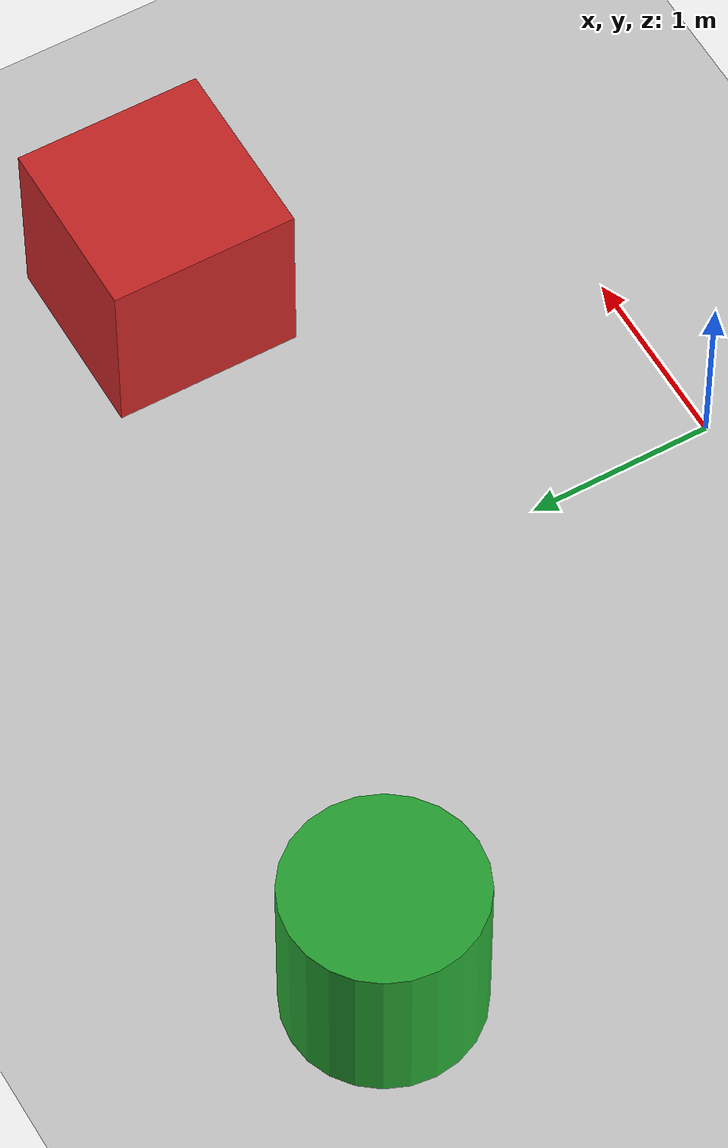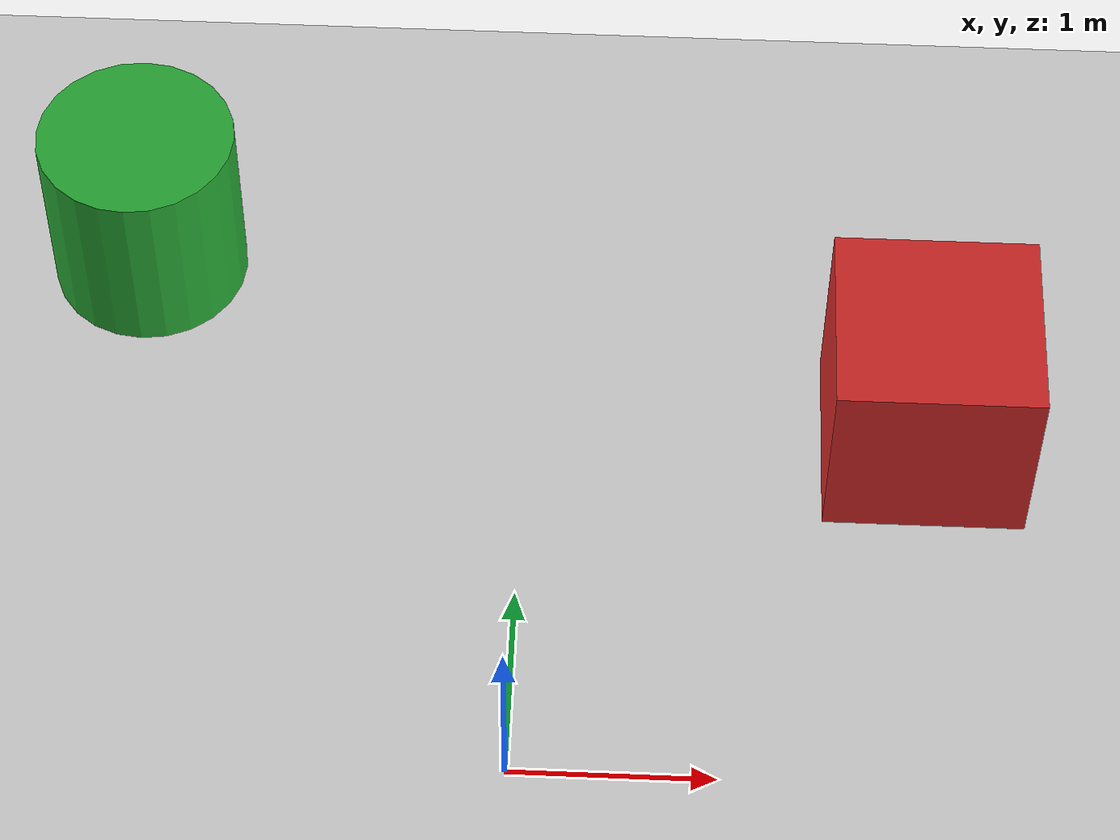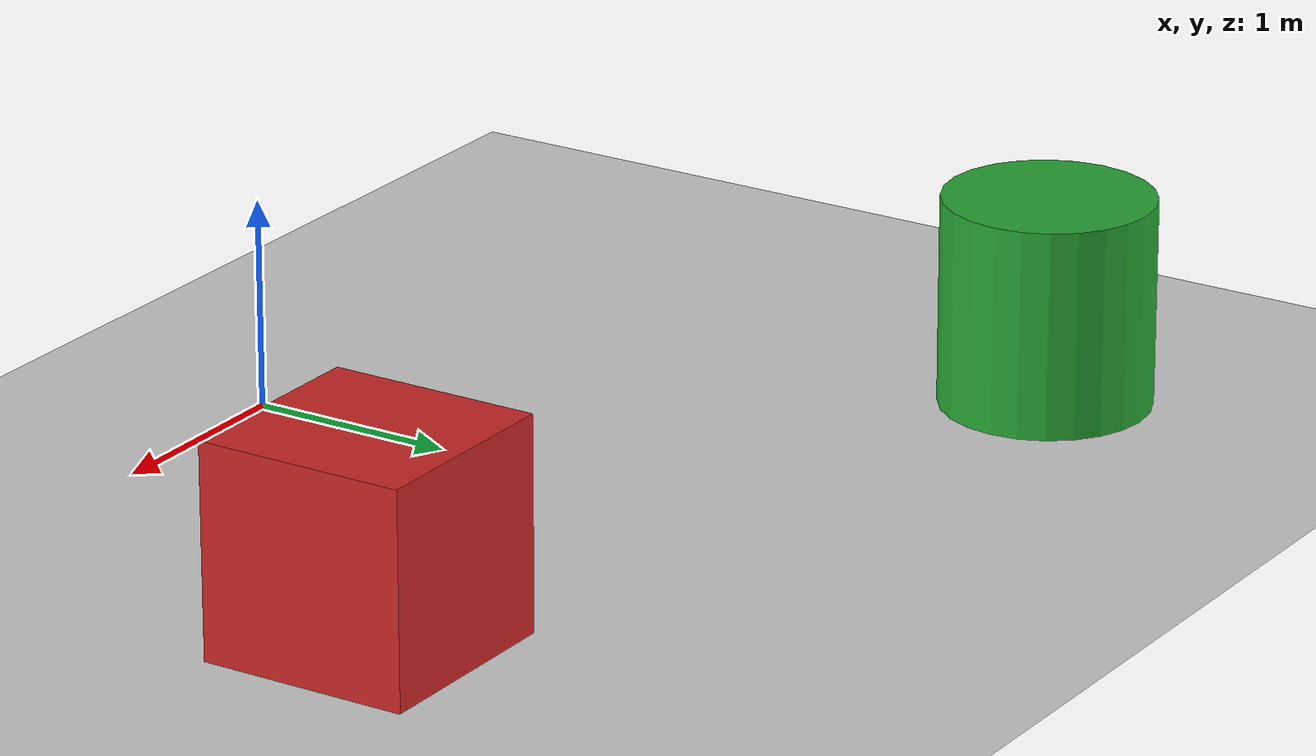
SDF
<?xml version="1.0" ?>
<sdf version="1.4">
  <world name="car_world">
    <!-- A global light source -->
    <include>
      <uri>model://sun</uri>
    </include>

    <!-- A ground plane -->
    <include>
      <uri>model://ground_plane</uri>
    </include>

    <!-- Add obstacles -->
    <model name="box1">
      <pose>2 2 0.5 0 0 0</pose>
      <static>true</static>
      <link name="link">
        <collision name="collision">
          <geometry>
            <box>
              <size>1 1 1</size>
            </box>
          </geometry>
        </collision>
        <visual name="visual">
          <geometry>
            <box>
              <size>1 1 1</size>
            </box>
          </geometry>
          <material>
            <script>
              <name>Gazebo/Red</name>
            </script>
          </material>
        </visual>
      </link>
    </model>

    <!-- Add a cylinder obstacle -->
    <model name="cylinder1">
      <pose>-2 3 0.5 0 0 0</pose>
      <static>true</static>
      <link name="link">
        <collision name="collision">
          <geometry>
            <cylinder>
              <radius>0.5</radius>
              <length>1</length>
            </cylinder>
          </geometry>
        </collision>
        <visual name="visual">
          <geometry>
            <cylinder>
              <radius>0.5</radius>
              <length>1</length>
            </cylinder>
          </geometry>
          <material>
            <script>
              <name>Gazebo/Green</name>
            </script>
          </material>
        </visual>
      </link>
    </model>

    <!-- Physics settings -->
    <physics type="ode">
      <max_step_size>0.001</max_step_size>
      <real_time_factor>1</real_time_factor>
      <real_time_update_rate>1000</real_time_update_rate>
      <gravity>0 0 -9.8</gravity>
    </physics>
  </world>
</sdf>
